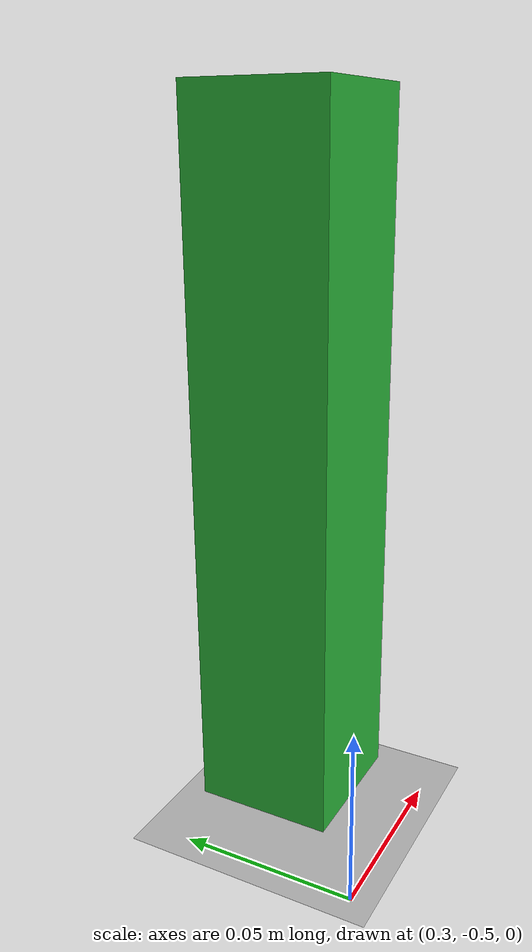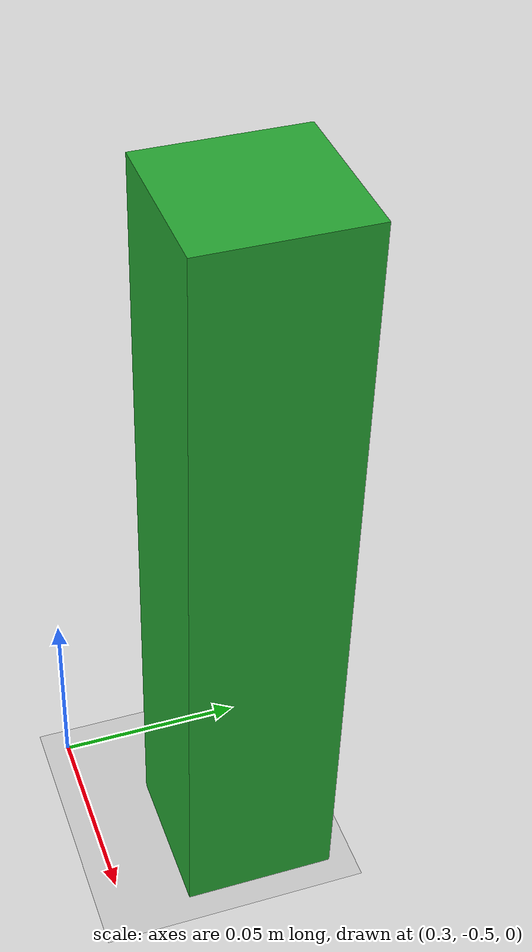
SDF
<?xml version="1.0"?>
<sdf version="1.4">
    <world name="default">
        <include>
            <uri>model://ground_plane</uri>
        </include>
        <!-- Global light source -->
        <include>
            <uri>model://sun</uri>
        </include>
        <!-- Focus camera on tall pendulum -->
        <gui fullscreen="0">
            <camera name="user_camera">
                <pose>4.927360 -4.376610 3.740080 0.000000 0.275643 2.356190</pose>
                <view_controller>orbit</view_controller>
            </camera>
        </gui>
        <!-- Object Definition -->
        <model name="unit_box">
            <pose frame="">0.34 -0.4623 0.1 0 -0 0</pose>
            <link name="link">
                <inertial>
                    <mass>0.5</mass>
                    <inertia>
                        <ixx>0.0004</ixx>
                        <ixy>0</ixy>
                        <ixz>0</ixz>
                        <iyy>0.0004</iyy>
                        <iyz>0</iyz>
                        <izz>0.0002</izz>
                    </inertia>
                    <pose frame="">0 0 0 0 -0 0</pose>
                </inertial>
                <collision name="collision">
                    <geometry>
                        <box>
                            <size>0.04 0.04 0.2</size>
                        </box>
                    </geometry>
                    <max_contacts>10</max_contacts>
                    <surface>
                        <contact>
                            <ode />
                        </contact>
                        <bounce />
                        <friction>
                            <torsional>
                                <ode />
                            </torsional>
                            <ode />
                        </friction>
                    </surface>
                </collision>
                <visual name="visual">
                    <geometry>
                        <box>
                            <size>0.04 0.04 0.2</size>
                        </box>
                    </geometry>
                    <material>
                        <script>
                            <name>Gazebo/Green</name>
                            <uri>file://media/materials/scripts/gazebo.material</uri>
                        </script>
                    </material>
                </visual>
                <self_collide>0</self_collide>
                <enable_wind>0</enable_wind>
                <kinematic>0</kinematic>
            </link>
        </model>
    </world>
</sdf>
